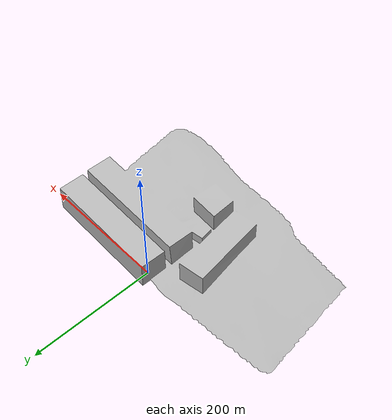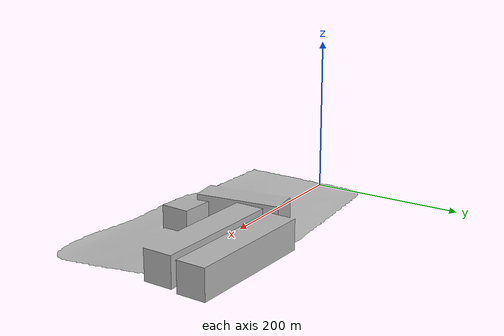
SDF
<?xml version="1.0" ?>
<sdf version="1.6">
  <world name="farm_world">

    <!-- Sunlight -->
    <include>
      <uri>model://sun</uri>
    </include>

    <include>
      <uri>model://farm_ground</uri>
      <pose>0 0 0 0 0 0</pose>
    </include>

  </world>
</sdf>

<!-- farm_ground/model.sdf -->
<sdf version="1.6">
  <model name="farm_ground">
    <static>true</static>
    <link name="ground_link">
      <visual name="farm_visual">
        <geometry>
          <mesh>
            <uri>model://farm_ground/meshes/farm_ground.dae</uri>
            <scale>1 1 1</scale>
          </mesh>
        </geometry>
      </visual>
      <collision name="farm_collision">
        <geometry>
          <mesh>
            <uri>model://farm_ground/meshes/farm_ground_collision.dae</uri>
            <scale>1 1 1</scale>
          </mesh>
        </geometry>
      </collision>
    </link>
  </model>
</sdf>
